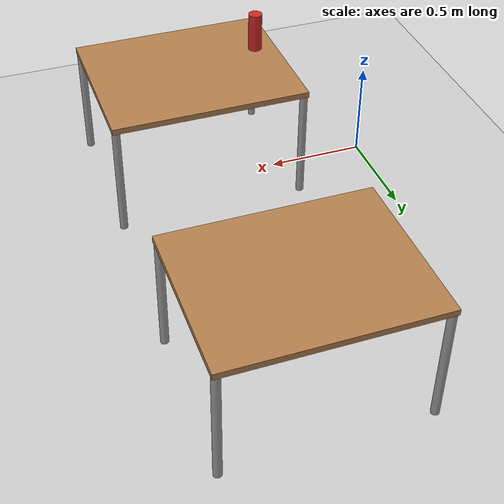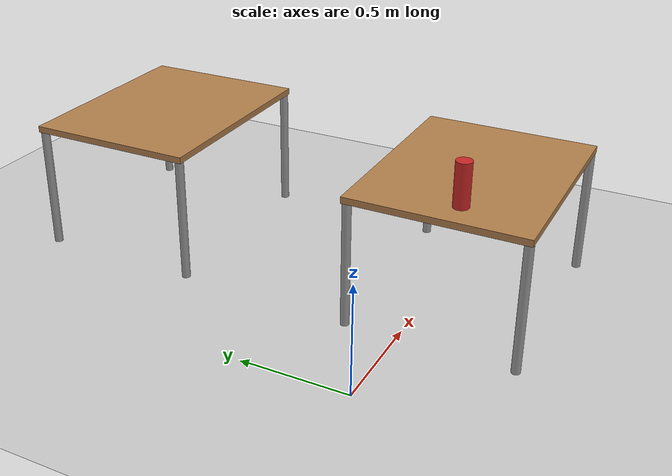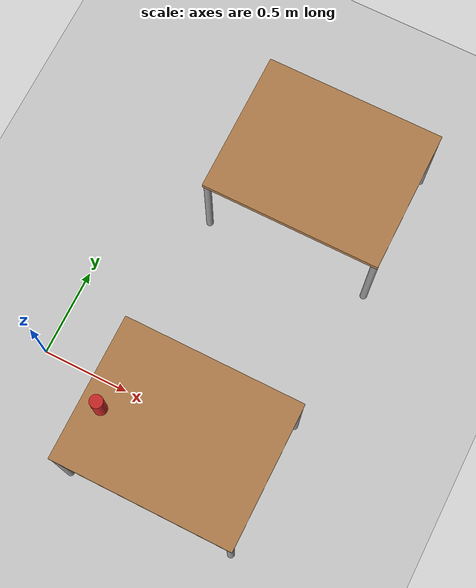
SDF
<sdf version="1.7">
 <world name="default">
  <light name="sun" type="directional">
   <pose>0 0 10 0 -0 0</pose>
   <diffuse>0.8 0.8 0.8 1</diffuse>
   <specular>0.2 0.2 0.2 1</specular>
   <attenuation>
    <range>1000</range>
    <constant>0.9</constant>
    <linear>0.01</linear>
    <quadratic>0.001</quadratic>
   </attenuation>
   <direction>-0.5 0.1 -0.9</direction>
   <spot><inner_angle>0</inner_angle><outer_angle>0</outer_angle><falloff>0</falloff></spot>
  </light>
  <model name="ground_plane">
   <static>1</static>
   <link name="link">
    <collision name="collision">
     <geometry><plane><normal>0 0 1</normal><size>100 100</size></plane></geometry>
     <surface>
      <contact><collide_bitmask>65535</collide_bitmask></contact>
      <friction><ode><mu>100</mu><mu2>50</mu2></ode></friction>
     </surface>
    </collision>
    <visual name="visual">
     <cast_shadows>0</cast_shadows>
     <geometry><plane><normal>0 0 1</normal><size>100 100</size></plane></geometry>
     <material>
      <script><uri>file://media/materials/scripts/gazebo.material</uri><name>Gazebo/Grey</name></script>
     </material>
    </visual>
   </link>
  </model>
  <gravity>0 0 -9.8</gravity>
  <magnetic_field>6e-06 2.3e-05 -4.2e-05</magnetic_field>
  <atmosphere type="adiabatic"/>
  <physics type="ode">
   <max_step_size>0.001</max_step_size>
   <real_time_factor>1</real_time_factor>
   <real_time_update_rate>1000</real_time_update_rate>
  </physics>
  <scene><ambient>0.4 0.4 0.4 1</ambient><background>0.7 0.7 0.7 1</background><shadows>1</shadows></scene>
  <spherical_coordinates>
   <surface_model>EARTH_WGS84</surface_model>
   <latitude_deg>0</latitude_deg>
   <longitude_deg>0</longitude_deg>
   <elevation>0</elevation>
   <heading_deg>0</heading_deg>
  </spherical_coordinates>
  <model name="table">
   <static>1</static>
   <link name="link">
    <collision name="surface">
     <pose>0 0 0.6 0 -0 0</pose>
     <geometry><box><size>1 0.8 0.03</size></box></geometry>
    </collision>
    <visual name="visual1">
     <pose>0 0 0.6 0 -0 0</pose>
     <geometry><box><size>1 0.8 0.03</size></box></geometry>
     <material>
      <script><uri>file://media/materials/scripts/gazebo.material</uri><name>Gazebo/Wood</name></script>
     </material>
    </visual>
    <collision name="front_left_leg">
     <pose>0.48 0.38 0.3 0 -0 0</pose>
     <geometry><cylinder><radius>0.02</radius><length>0.6</length></cylinder></geometry>
    </collision>
    <visual name="front_left_leg">
     <pose>0.48 0.38 0.3 0 -0 0</pose>
     <geometry><cylinder><radius>0.02</radius><length>0.6</length></cylinder></geometry>
     <material>
      <script><uri>file://media/materials/scripts/gazebo.material</uri><name>Gazebo/Grey</name></script>
     </material>
    </visual>
    <collision name="front_right_leg">
     <pose>0.48 -0.38 0.3 0 -0 0</pose>
     <geometry><cylinder><radius>0.02</radius><length>0.6</length></cylinder></geometry>
    </collision>
    <visual name="front_right_leg">
     <pose>0.48 -0.38 0.3 0 -0 0</pose>
     <geometry><cylinder><radius>0.02</radius><length>0.6</length></cylinder></geometry>
     <material>
      <script><uri>file://media/materials/scripts/gazebo.material</uri><name>Gazebo/Grey</name></script>
     </material>
    </visual>
    <collision name="back_right_leg">
     <pose>-0.48 -0.38 0.3 0 -0 0</pose>
     <geometry><cylinder><radius>0.02</radius><length>0.6</length></cylinder></geometry>
    </collision>
    <visual name="back_right_leg">
     <pose>-0.48 -0.38 0.3 0 -0 0</pose>
     <geometry><cylinder><radius>0.02</radius><length>0.6</length></cylinder></geometry>
     <material>
      <script><uri>file://media/materials/scripts/gazebo.material</uri><name>Gazebo/Grey</name></script>
     </material>
    </visual>
    <collision name="back_left_leg">
     <pose>-0.48 0.38 0.3 0 -0 0</pose>
     <geometry><cylinder><radius>0.02</radius><length>0.6</length></cylinder></geometry>
    </collision>
    <visual name="back_left_leg">
     <pose>-0.48 0.38 0.3 0 -0 0</pose>
     <geometry><cylinder><radius>0.02</radius><length>0.6</length></cylinder></geometry>
     <material>
      <script><uri>file://media/materials/scripts/gazebo.material</uri><name>Gazebo/Grey</name></script>
     </material>
    </visual>
    <velocity_decay><linear>0</linear><angular>0</angular></velocity_decay>
   </link>
   <pose>0.92155 -0.139738 0 0 -0 0</pose>
  </model>
  <model name="table_0">
   <static>1</static>
   <link name="link">
    <collision name="surface">
     <pose>0 0 0.6 0 -0 0</pose>
     <geometry><box><size>1 0.8 0.03</size></box></geometry>
    </collision>
    <visual name="visual1">
     <pose>0 0 0.6 0 -0 0</pose>
     <geometry><box><size>1 0.8 0.03</size></box></geometry>
     <material>
      <script><uri>file://media/materials/scripts/gazebo.material</uri><name>Gazebo/Wood</name></script>
     </material>
    </visual>
    <collision name="front_left_leg">
     <pose>0.48 0.38 0.3 0 -0 0</pose>
     <geometry><cylinder><radius>0.02</radius><length>0.6</length></cylinder></geometry>
    </collision>
    <visual name="front_left_leg">
     <pose>0.48 0.38 0.3 0 -0 0</pose>
     <geometry><cylinder><radius>0.02</radius><length>0.6</length></cylinder></geometry>
     <material>
      <script><uri>file://media/materials/scripts/gazebo.material</uri><name>Gazebo/Grey</name></script>
     </material>
    </visual>
    <collision name="front_right_leg">
     <pose>0.48 -0.38 0.3 0 -0 0</pose>
     <geometry><cylinder><radius>0.02</radius><length>0.6</length></cylinder></geometry>
    </collision>
    <visual name="front_right_leg">
     <pose>0.48 -0.38 0.3 0 -0 0</pose>
     <geometry><cylinder><radius>0.02</radius><length>0.6</length></cylinder></geometry>
     <material>
      <script><uri>file://media/materials/scripts/gazebo.material</uri><name>Gazebo/Grey</name></script>
     </material>
    </visual>
    <collision name="back_right_leg">
     <pose>-0.48 -0.38 0.3 0 -0 0</pose>
     <geometry><cylinder><radius>0.02</radius><length>0.6</length></cylinder></geometry>
    </collision>
    <visual name="back_right_leg">
     <pose>-0.48 -0.38 0.3 0 -0 0</pose>
     <geometry><cylinder><radius>0.02</radius><length>0.6</length></cylinder></geometry>
     <material>
      <script><uri>file://media/materials/scripts/gazebo.material</uri><name>Gazebo/Grey</name></script>
     </material>
    </visual>
    <collision name="back_left_leg">
     <pose>-0.48 0.38 0.3 0 -0 0</pose>
     <geometry><cylinder><radius>0.02</radius><length>0.6</length></cylinder></geometry>
    </collision>
    <visual name="back_left_leg">
     <pose>-0.48 0.38 0.3 0 -0 0</pose>
     <geometry><cylinder><radius>0.02</radius><length>0.6</length></cylinder></geometry>
     <material>
      <script><uri>file://media/materials/scripts/gazebo.material</uri><name>Gazebo/Grey</name></script>
     </material>
    </visual>
    <velocity_decay><linear>0</linear><angular>0</angular></velocity_decay>
   </link>
   <pose>0.945103 1.45361 0 0 -0 0</pose>
  </model>
  <model name="small_cylinder">
   <link name="link">
    <gravity>0</gravity>
    <pose>0 0 0.1 0 -0 0</pose>
    <inertial>
     <mass>1</mass>
     <inertia>
      <ixx>0.000363958</ixx>
      <ixy>0</ixy>
      <ixz>0</ixz>
      <iyy>0.000363958</iyy>
      <iyz>0</iyz>
      <izz>0.0006125</izz>
     </inertia>
    </inertial>
    <visual name="visual">
     <geometry><cylinder><radius>0.035</radius><length>0.2</length></cylinder></geometry>
     <material>
      <script><uri>file://media/materials/scripts/gazebo.material</uri><name>Gazebo/Red</name></script>
     </material>
    </visual>
    <collision name="collision">
     <geometry><cylinder><radius>0.035</radius><length>0.2</length></cylinder></geometry>
     <surface><friction><ode><mu>0</mu><mu2>0</mu2></ode></friction></surface>
    </collision>
   </link>
   <pose>0.537632 -0.210692 0.626178 0 -0 0</pose>
  </model>
 </world>
</sdf>
